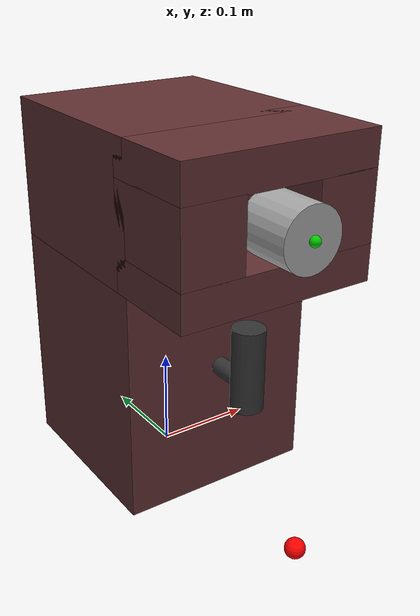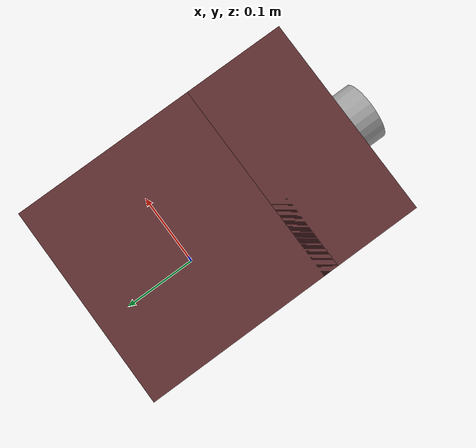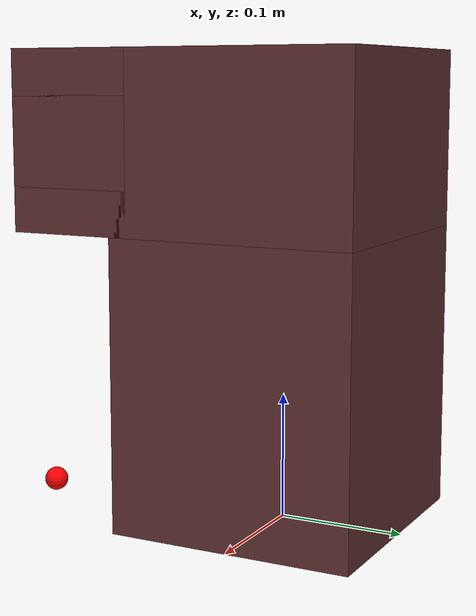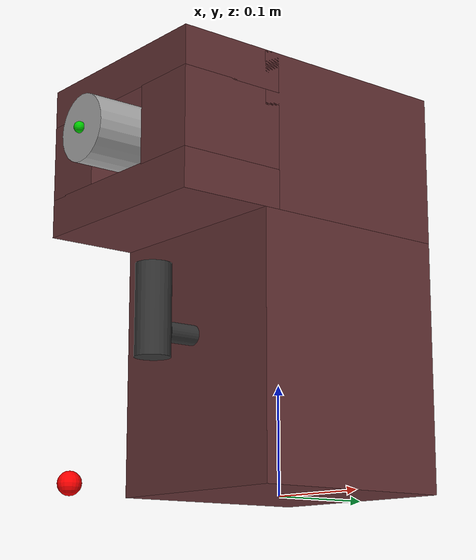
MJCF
<mujoco model="coffeemachine">
    <compiler angle="radian" inertiafromgeom="auto" inertiagrouprange="4 5"/>
    <asset>

        <material name="cm_col" rgba="0.3 0.3 1.0 0.5" shininess="0" specular="0"/>
        <material name="cmred" rgba="0.38 0.19 0.2 1" shininess="1" reflectance=".7" specular=".5"/>
        <material name="cmwhite" rgba=".85 .85 .85 1" shininess="1" reflectance=".7" specular=".5"/>
        <material name="cmgrey" rgba=".65 .65 .65 1" shininess="1" reflectance="1" specular=".5"/>

        <material name="cmblack" rgba=".2 .2 .2 1" shininess="1" reflectance=".7" specular=".5"/>
        <mesh file="meshes/coffeemachine/body1.stl" name="body1"/>
        <mesh file="meshes/coffeemachine/body2.stl" name="body2"/>
        <mesh file="meshes/coffeemachine/button.stl" name="button"/>
        <mesh file="meshes/coffeemachine/mug.stl" name="mug"/>
        <mesh file="meshes/coffeemachine/handle.stl" name="handle"/>
        <mesh file="meshes/coffeemachine/spout.stl" name="spout"/>
        <mesh file="meshes/coffeemachine/spoutconnect.stl" name="spoutconnect"/>
        <mesh file="meshes/coffeemachine/buttonring.stl" name="buttonring"/>
        <mesh file="meshes/coffeemachine/bodypiece1.stl" name="bodypiece1"/>
    </asset>
    <default>

        <default class="cm_base">
            <joint armature="0.001" damping="2" limited="true"/>
            <geom conaffinity="0" contype="0" group="1" type="mesh"/>
            <position ctrllimited="true" ctrlrange="0 1.57"/>
            <default class="cm_viz">
                <geom condim="4" type="mesh"/>
            </default>
            <default class="cm_col">
                <geom conaffinity="1" condim="3" contype="1" group="0" material="cm_col" solimp="0.99 0.99 0.01"
                      solref="0.01 1"/>
            </default>
        </default>
    </default>
    <worldbody>
        <body childclass="cm_base" name="coffeemachine">
            <body name="object">
                <body name="cm_link">
                    <geom material="cmblack" euler="1.57 0 0" pos="0 -0.109 0.135" size="0.009 0.018" type="cylinder" conaffinity="0" contype="0" group="0"/>
                    <geom class="cm_col" pos="0.069 -0.133 0.3" size="0.031 0.05 0.035" type="box" material="cmred"/>
                    <geom class="cm_col" pos="-0.069 -0.133 0.3" size="0.031 0.05 0.035" type="box" material="cmred"/>
                    <geom class="cm_col" pos="0.0 -0.133 0.352" size="0.1 0.05 0.018" type="box" material="cmred"/>
                    <geom class="cm_col" pos="0.0 -0.133 0.248" size="0.1 0.05 0.018" type="box" material="cmred"/>
                    <geom class="cm_col" pos="0 0 0.115" size="0.1 0.098 0.115" type="box" material="cmred"/>
                    <geom class="cm_col" euler="1.57 0 0" pos="0 -0.109 0.135" size="0.009 0.018" type="cylinder" material="cmblack"/>
                    <geom class="cm_col" pos="0.0 -0.141 0.152" size="0.016 0.041" type="cylinder" material="cmblack"/>
                    <geom class="cm_col" pos="0 0 0.3" size="0.1 0.098 0.07" type="box" material="cmred"/>
                    <site name="coffee_goal" pos="0 -.22 0" size="0.01" rgba="1 0 0 1"/>
                </body>
                <body name="cmbutton_1" pos="0 0 0">
                    <geom material="cmgrey" euler="1.57 0 0" pos="0 -0.19 0.3" size="0.03 0.028 0.032" type="cylinder"
                          group="0"/>
                    <joint type="slide" range="0 0.03" axis="0 1 0" name="goal_slidey_1" pos="0 0 0" damping="1.0"/>
                    <site name="buttonStart" pos="0.0 -0.22 0.3" size="0.005" rgba="0 0.8 0 1"/>
                </body>

            </body>
            <site rgba="0 0 0 0" size="0.0005" pos="0 0 -0.08" name="bottom_site"/>
            <site rgba="0 0 0 0" size="0.0005" pos="0 0 0.65" name="top_site"/>
            <site rgba="0 0 0 0" size="0.0005" pos="0.011 0.09 0" name="horizontal_radius_site"/>
        </body>
    </worldbody>
</mujoco>
